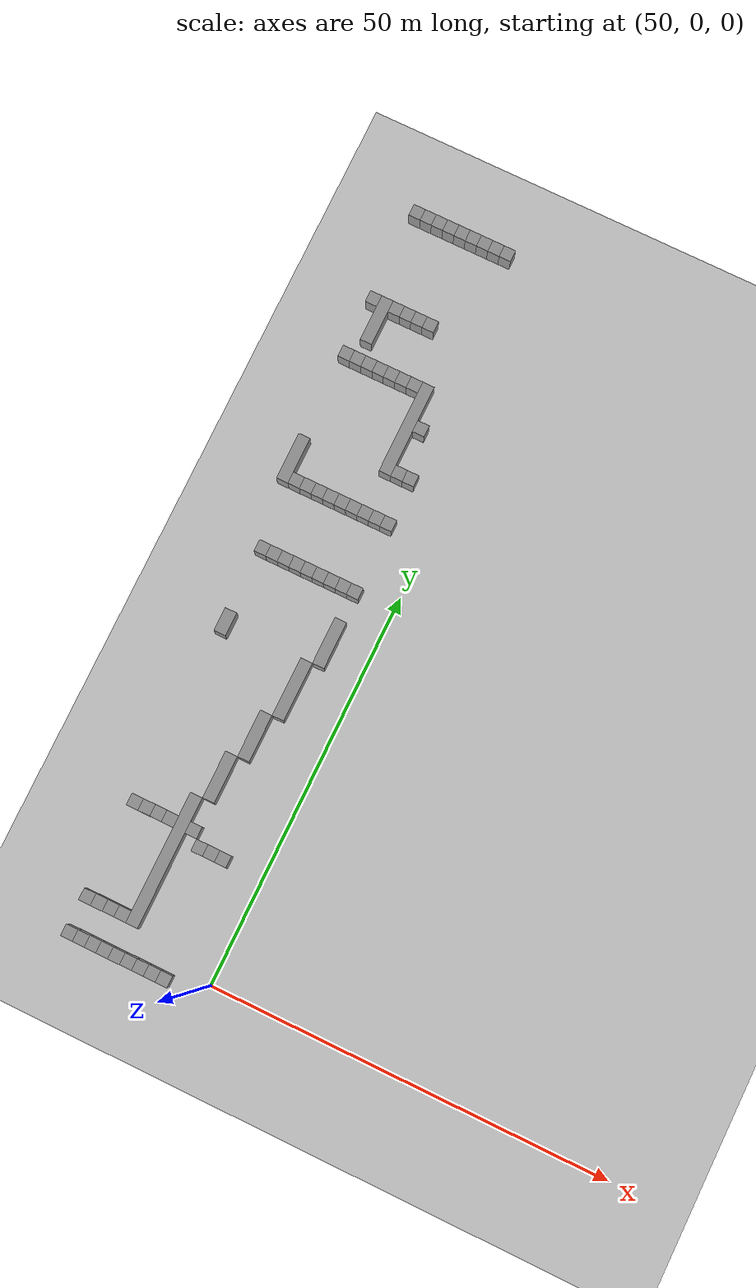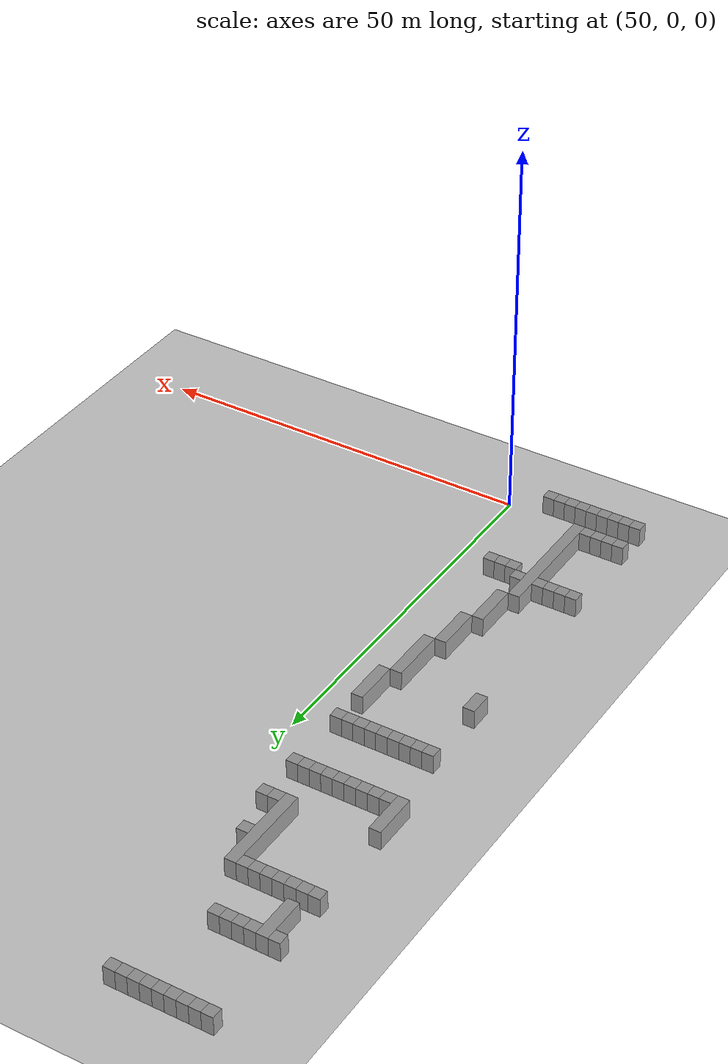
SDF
<sdf version="1.4">
 <world name="1_wall">
  <model name="ground_plane">
   <static>1</static>
   <link name="link">
    <collision name="collision">
     <geometry><plane><normal>0 0 1</normal><size>1000 1000</size></plane></geometry>
     <surface><friction><ode><mu>100</mu><mu2>50</mu2></ode></friction></surface>
    </collision>
    <visual name="visual">
     <cast_shadows>0</cast_shadows>
     <geometry><plane><normal>0 0 1</normal><size>10000 10000</size></plane></geometry>
     <material>
      <script><uri>file://media/materials/scripts/gazebo.material</uri><name>Gazebo/Grey</name></script>
     </material>
    </visual>
    <velocity_decay><linear>0</linear><angular>0</angular></velocity_decay>
   </link>
  </model>
  <model name="Wall_146">
   <static>1</static>
   <link name="Wall_146">
    <collision name="Wall_Collision_146">
     <geometry><box><size>6.0 1.5 2.5</size></box></geometry>
     <pose>0 0 1.25 0 -0 0</pose>
    </collision>
    <visual name="Wall_Visual_146">
     <pose>0 0 1.25 0 -0 0</pose>
     <geometry><box><size>6.0 1.5 2.5</size></box></geometry>
     <material>
      <script><uri>file://media/materials/scripts/gazebo.material</uri><name>Gazebo/Grey</name></script>
     </material>
    </visual>
    <velocity_decay><linear>0</linear><angular>0</angular></velocity_decay>
    <pose>31.5 59.25 0 0 0 1.5707963267948966</pose>
   </link>
  </model>
  <model name="Wall_147">
   <static>1</static>
   <link name="Wall_147">
    <collision name="Wall_Collision_147">
     <geometry><box><size>1.5 1.5 2.5</size></box></geometry>
     <pose>0 0 1.25 0 -0 0</pose>
    </collision>
    <visual name="Wall_Visual_147">
     <pose>0 0 1.25 0 -0 0</pose>
     <geometry><box><size>1.5 1.5 2.5</size></box></geometry>
     <material>
      <script><uri>file://media/materials/scripts/gazebo.material</uri><name>Gazebo/Grey</name></script>
     </material>
    </visual>
    <velocity_decay><linear>0</linear><angular>0</angular></velocity_decay>
    <pose>31.5 73.5 0 0 0 1.5707963267948966</pose>
   </link>
  </model>
  <model name="Wall_148">
   <static>1</static>
   <link name="Wall_148">
    <collision name="Wall_Collision_148">
     <geometry><box><size>1.5 1.5 2.5</size></box></geometry>
     <pose>0 0 1.25 0 -0 0</pose>
    </collision>
    <visual name="Wall_Visual_148">
     <pose>0 0 1.25 0 -0 0</pose>
     <geometry><box><size>1.5 1.5 2.5</size></box></geometry>
     <material>
      <script><uri>file://media/materials/scripts/gazebo.material</uri><name>Gazebo/Grey</name></script>
     </material>
    </visual>
    <velocity_decay><linear>0</linear><angular>0</angular></velocity_decay>
    <pose>31.5 81.0 0 0 0 1.5707963267948966</pose>
   </link>
  </model>
  <model name="Wall_149">
   <static>1</static>
   <link name="Wall_149">
    <collision name="Wall_Collision_149">
     <geometry><box><size>1.5 1.5 2.5</size></box></geometry>
     <pose>0 0 1.25 0 -0 0</pose>
    </collision>
    <visual name="Wall_Visual_149">
     <pose>0 0 1.25 0 -0 0</pose>
     <geometry><box><size>1.5 1.5 2.5</size></box></geometry>
     <material>
      <script><uri>file://media/materials/scripts/gazebo.material</uri><name>Gazebo/Grey</name></script>
     </material>
    </visual>
    <velocity_decay><linear>0</linear><angular>0</angular></velocity_decay>
    <pose>31.5 93.0 0 0 0 1.5707963267948966</pose>
   </link>
  </model>
  <model name="Wall_150">
   <static>1</static>
   <link name="Wall_150">
    <collision name="Wall_Collision_150">
     <geometry><box><size>1.5 1.5 2.5</size></box></geometry>
     <pose>0 0 1.25 0 -0 0</pose>
    </collision>
    <visual name="Wall_Visual_150">
     <pose>0 0 1.25 0 -0 0</pose>
     <geometry><box><size>1.5 1.5 2.5</size></box></geometry>
     <material>
      <script><uri>file://media/materials/scripts/gazebo.material</uri><name>Gazebo/Grey</name></script>
     </material>
    </visual>
    <velocity_decay><linear>0</linear><angular>0</angular></velocity_decay>
    <pose>33.0 -1.5 0 0 0 1.5707963267948966</pose>
   </link>
  </model>
  <model name="Wall_151">
   <static>1</static>
   <link name="Wall_151">
    <collision name="Wall_Collision_151">
     <geometry><box><size>1.5 1.5 2.5</size></box></geometry>
     <pose>0 0 1.25 0 -0 0</pose>
    </collision>
    <visual name="Wall_Visual_151">
     <pose>0 0 1.25 0 -0 0</pose>
     <geometry><box><size>1.5 1.5 2.5</size></box></geometry>
     <material>
      <script><uri>file://media/materials/scripts/gazebo.material</uri><name>Gazebo/Grey</name></script>
     </material>
    </visual>
    <velocity_decay><linear>0</linear><angular>0</angular></velocity_decay>
    <pose>33.0 3.0 0 0 0 1.5707963267948966</pose>
   </link>
  </model>
  <model name="Wall_152">
   <static>1</static>
   <link name="Wall_152">
    <collision name="Wall_Collision_152">
     <geometry><box><size>1.5 1.5 2.5</size></box></geometry>
     <pose>0 0 1.25 0 -0 0</pose>
    </collision>
    <visual name="Wall_Visual_152">
     <pose>0 0 1.25 0 -0 0</pose>
     <geometry><box><size>1.5 1.5 2.5</size></box></geometry>
     <material>
      <script><uri>file://media/materials/scripts/gazebo.material</uri><name>Gazebo/Grey</name></script>
     </material>
    </visual>
    <velocity_decay><linear>0</linear><angular>0</angular></velocity_decay>
    <pose>33.0 15.0 0 0 0 1.5707963267948966</pose>
   </link>
  </model>
  <model name="Wall_153">
   <static>1</static>
   <link name="Wall_153">
    <collision name="Wall_Collision_153">
     <geometry><box><size>3.0 1.5 2.5</size></box></geometry>
     <pose>0 0 1.25 0 -0 0</pose>
    </collision>
    <visual name="Wall_Visual_153">
     <pose>0 0 1.25 0 -0 0</pose>
     <geometry><box><size>3.0 1.5 2.5</size></box></geometry>
     <material>
      <script><uri>file://media/materials/scripts/gazebo.material</uri><name>Gazebo/Grey</name></script>
     </material>
    </visual>
    <velocity_decay><linear>0</linear><angular>0</angular></velocity_decay>
    <pose>33.0 38.25 0 0 0 1.5707963267948966</pose>
   </link>
  </model>
  <model name="Wall_154">
   <static>1</static>
   <link name="Wall_154">
    <collision name="Wall_Collision_154">
     <geometry><box><size>1.5 1.5 2.5</size></box></geometry>
     <pose>0 0 1.25 0 -0 0</pose>
    </collision>
    <visual name="Wall_Visual_154">
     <pose>0 0 1.25 0 -0 0</pose>
     <geometry><box><size>1.5 1.5 2.5</size></box></geometry>
     <material>
      <script><uri>file://media/materials/scripts/gazebo.material</uri><name>Gazebo/Grey</name></script>
     </material>
    </visual>
    <velocity_decay><linear>0</linear><angular>0</angular></velocity_decay>
    <pose>33.0 48.0 0 0 0 1.5707963267948966</pose>
   </link>
  </model>
  <model name="Wall_155">
   <static>1</static>
   <link name="Wall_155">
    <collision name="Wall_Collision_155">
     <geometry><box><size>1.5 1.5 2.5</size></box></geometry>
     <pose>0 0 1.25 0 -0 0</pose>
    </collision>
    <visual name="Wall_Visual_155">
     <pose>0 0 1.25 0 -0 0</pose>
     <geometry><box><size>1.5 1.5 2.5</size></box></geometry>
     <material>
      <script><uri>file://media/materials/scripts/gazebo.material</uri><name>Gazebo/Grey</name></script>
     </material>
    </visual>
    <velocity_decay><linear>0</linear><angular>0</angular></velocity_decay>
    <pose>33.0 57.0 0 0 0 1.5707963267948966</pose>
   </link>
  </model>
  <model name="Wall_156">
   <static>1</static>
   <link name="Wall_156">
    <collision name="Wall_Collision_156">
     <geometry><box><size>1.5 1.5 2.5</size></box></geometry>
     <pose>0 0 1.25 0 -0 0</pose>
    </collision>
    <visual name="Wall_Visual_156">
     <pose>0 0 1.25 0 -0 0</pose>
     <geometry><box><size>1.5 1.5 2.5</size></box></geometry>
     <material>
      <script><uri>file://media/materials/scripts/gazebo.material</uri><name>Gazebo/Grey</name></script>
     </material>
    </visual>
    <velocity_decay><linear>0</linear><angular>0</angular></velocity_decay>
    <pose>33.0 73.5 0 0 0 1.5707963267948966</pose>
   </link>
  </model>
  <model name="Wall_157">
   <static>1</static>
   <link name="Wall_157">
    <collision name="Wall_Collision_157">
     <geometry><box><size>6.0 1.5 2.5</size></box></geometry>
     <pose>0 0 1.25 0 -0 0</pose>
    </collision>
    <visual name="Wall_Visual_157">
     <pose>0 0 1.25 0 -0 0</pose>
     <geometry><box><size>6.0 1.5 2.5</size></box></geometry>
     <material>
      <script><uri>file://media/materials/scripts/gazebo.material</uri><name>Gazebo/Grey</name></script>
     </material>
    </visual>
    <velocity_decay><linear>0</linear><angular>0</angular></velocity_decay>
    <pose>33.0 78.75 0 0 0 1.5707963267948966</pose>
   </link>
  </model>
  <model name="Wall_158">
   <static>1</static>
   <link name="Wall_158">
    <collision name="Wall_Collision_158">
     <geometry><box><size>1.5 1.5 2.5</size></box></geometry>
     <pose>0 0 1.25 0 -0 0</pose>
    </collision>
    <visual name="Wall_Visual_158">
     <pose>0 0 1.25 0 -0 0</pose>
     <geometry><box><size>1.5 1.5 2.5</size></box></geometry>
     <material>
      <script><uri>file://media/materials/scripts/gazebo.material</uri><name>Gazebo/Grey</name></script>
     </material>
    </visual>
    <velocity_decay><linear>0</linear><angular>0</angular></velocity_decay>
    <pose>33.0 93.0 0 0 0 1.5707963267948966</pose>
   </link>
  </model>
  <model name="Wall_159">
   <static>1</static>
   <link name="Wall_159">
    <collision name="Wall_Collision_159">
     <geometry><box><size>1.5 1.5 2.5</size></box></geometry>
     <pose>0 0 1.25 0 -0 0</pose>
    </collision>
    <visual name="Wall_Visual_159">
     <pose>0 0 1.25 0 -0 0</pose>
     <geometry><box><size>1.5 1.5 2.5</size></box></geometry>
     <material>
      <script><uri>file://media/materials/scripts/gazebo.material</uri><name>Gazebo/Grey</name></script>
     </material>
    </visual>
    <velocity_decay><linear>0</linear><angular>0</angular></velocity_decay>
    <pose>34.5 -1.5 0 0 0 1.5707963267948966</pose>
   </link>
  </model>
  <model name="Wall_160">
   <static>1</static>
   <link name="Wall_160">
    <collision name="Wall_Collision_160">
     <geometry><box><size>1.5 1.5 2.5</size></box></geometry>
     <pose>0 0 1.25 0 -0 0</pose>
    </collision>
    <visual name="Wall_Visual_160">
     <pose>0 0 1.25 0 -0 0</pose>
     <geometry><box><size>1.5 1.5 2.5</size></box></geometry>
     <material>
      <script><uri>file://media/materials/scripts/gazebo.material</uri><name>Gazebo/Grey</name></script>
     </material>
    </visual>
    <velocity_decay><linear>0</linear><angular>0</angular></velocity_decay>
    <pose>34.5 3.0 0 0 0 1.5707963267948966</pose>
   </link>
  </model>
  <model name="Wall_161">
   <static>1</static>
   <link name="Wall_161">
    <collision name="Wall_Collision_161">
     <geometry><box><size>1.5 1.5 2.5</size></box></geometry>
     <pose>0 0 1.25 0 -0 0</pose>
    </collision>
    <visual name="Wall_Visual_161">
     <pose>0 0 1.25 0 -0 0</pose>
     <geometry><box><size>1.5 1.5 2.5</size></box></geometry>
     <material>
      <script><uri>file://media/materials/scripts/gazebo.material</uri><name>Gazebo/Grey</name></script>
     </material>
    </visual>
    <velocity_decay><linear>0</linear><angular>0</angular></velocity_decay>
    <pose>34.5 15.0 0 0 0 1.5707963267948966</pose>
   </link>
  </model>
  <model name="Wall_162">
   <static>1</static>
   <link name="Wall_162">
    <collision name="Wall_Collision_162">
     <geometry><box><size>1.5 1.5 2.5</size></box></geometry>
     <pose>0 0 1.25 0 -0 0</pose>
    </collision>
    <visual name="Wall_Visual_162">
     <pose>0 0 1.25 0 -0 0</pose>
     <geometry><box><size>1.5 1.5 2.5</size></box></geometry>
     <material>
      <script><uri>file://media/materials/scripts/gazebo.material</uri><name>Gazebo/Grey</name></script>
     </material>
    </visual>
    <velocity_decay><linear>0</linear><angular>0</angular></velocity_decay>
    <pose>34.5 48.0 0 0 0 1.5707963267948966</pose>
   </link>
  </model>
  <model name="Wall_163">
   <static>1</static>
   <link name="Wall_163">
    <collision name="Wall_Collision_163">
     <geometry><box><size>1.5 1.5 2.5</size></box></geometry>
     <pose>0 0 1.25 0 -0 0</pose>
    </collision>
    <visual name="Wall_Visual_163">
     <pose>0 0 1.25 0 -0 0</pose>
     <geometry><box><size>1.5 1.5 2.5</size></box></geometry>
     <material>
      <script><uri>file://media/materials/scripts/gazebo.material</uri><name>Gazebo/Grey</name></script>
     </material>
    </visual>
    <velocity_decay><linear>0</linear><angular>0</angular></velocity_decay>
    <pose>34.5 57.0 0 0 0 1.5707963267948966</pose>
   </link>
  </model>
  <model name="Wall_164">
   <static>1</static>
   <link name="Wall_164">
    <collision name="Wall_Collision_164">
     <geometry><box><size>1.5 1.5 2.5</size></box></geometry>
     <pose>0 0 1.25 0 -0 0</pose>
    </collision>
    <visual name="Wall_Visual_164">
     <pose>0 0 1.25 0 -0 0</pose>
     <geometry><box><size>1.5 1.5 2.5</size></box></geometry>
     <material>
      <script><uri>file://media/materials/scripts/gazebo.material</uri><name>Gazebo/Grey</name></script>
     </material>
    </visual>
    <velocity_decay><linear>0</linear><angular>0</angular></velocity_decay>
    <pose>34.5 73.5 0 0 0 1.5707963267948966</pose>
   </link>
  </model>
  <model name="Wall_165">
   <static>1</static>
   <link name="Wall_165">
    <collision name="Wall_Collision_165">
     <geometry><box><size>1.5 1.5 2.5</size></box></geometry>
     <pose>0 0 1.25 0 -0 0</pose>
    </collision>
    <visual name="Wall_Visual_165">
     <pose>0 0 1.25 0 -0 0</pose>
     <geometry><box><size>1.5 1.5 2.5</size></box></geometry>
     <material>
      <script><uri>file://media/materials/scripts/gazebo.material</uri><name>Gazebo/Grey</name></script>
     </material>
    </visual>
    <velocity_decay><linear>0</linear><angular>0</angular></velocity_decay>
    <pose>34.5 81.0 0 0 0 1.5707963267948966</pose>
   </link>
  </model>
  <model name="Wall_166">
   <static>1</static>
   <link name="Wall_166">
    <collision name="Wall_Collision_166">
     <geometry><box><size>1.5 1.5 2.5</size></box></geometry>
     <pose>0 0 1.25 0 -0 0</pose>
    </collision>
    <visual name="Wall_Visual_166">
     <pose>0 0 1.25 0 -0 0</pose>
     <geometry><box><size>1.5 1.5 2.5</size></box></geometry>
     <material>
      <script><uri>file://media/materials/scripts/gazebo.material</uri><name>Gazebo/Grey</name></script>
     </material>
    </visual>
    <velocity_decay><linear>0</linear><angular>0</angular></velocity_decay>
    <pose>34.5 93.0 0 0 0 1.5707963267948966</pose>
   </link>
  </model>
  <model name="Wall_167">
   <static>1</static>
   <link name="Wall_167">
    <collision name="Wall_Collision_167">
     <geometry><box><size>1.5 1.5 2.5</size></box></geometry>
     <pose>0 0 1.25 0 -0 0</pose>
    </collision>
    <visual name="Wall_Visual_167">
     <pose>0 0 1.25 0 -0 0</pose>
     <geometry><box><size>1.5 1.5 2.5</size></box></geometry>
     <material>
      <script><uri>file://media/materials/scripts/gazebo.material</uri><name>Gazebo/Grey</name></script>
     </material>
    </visual>
    <velocity_decay><linear>0</linear><angular>0</angular></velocity_decay>
    <pose>36.0 -1.5 0 0 0 1.5707963267948966</pose>
   </link>
  </model>
  <model name="Wall_168">
   <static>1</static>
   <link name="Wall_168">
    <collision name="Wall_Collision_168">
     <geometry><box><size>1.5 1.5 2.5</size></box></geometry>
     <pose>0 0 1.25 0 -0 0</pose>
    </collision>
    <visual name="Wall_Visual_168">
     <pose>0 0 1.25 0 -0 0</pose>
     <geometry><box><size>1.5 1.5 2.5</size></box></geometry>
     <material>
      <script><uri>file://media/materials/scripts/gazebo.material</uri><name>Gazebo/Grey</name></script>
     </material>
    </visual>
    <velocity_decay><linear>0</linear><angular>0</angular></velocity_decay>
    <pose>36.0 3.0 0 0 0 1.5707963267948966</pose>
   </link>
  </model>
  <model name="Wall_169">
   <static>1</static>
   <link name="Wall_169">
    <collision name="Wall_Collision_169">
     <geometry><box><size>1.5 1.5 2.5</size></box></geometry>
     <pose>0 0 1.25 0 -0 0</pose>
    </collision>
    <visual name="Wall_Visual_169">
     <pose>0 0 1.25 0 -0 0</pose>
     <geometry><box><size>1.5 1.5 2.5</size></box></geometry>
     <material>
      <script><uri>file://media/materials/scripts/gazebo.material</uri><name>Gazebo/Grey</name></script>
     </material>
    </visual>
    <velocity_decay><linear>0</linear><angular>0</angular></velocity_decay>
    <pose>36.0 15.0 0 0 0 1.5707963267948966</pose>
   </link>
  </model>
  <model name="Wall_170">
   <static>1</static>
   <link name="Wall_170">
    <collision name="Wall_Collision_170">
     <geometry><box><size>1.5 1.5 2.5</size></box></geometry>
     <pose>0 0 1.25 0 -0 0</pose>
    </collision>
    <visual name="Wall_Visual_170">
     <pose>0 0 1.25 0 -0 0</pose>
     <geometry><box><size>1.5 1.5 2.5</size></box></geometry>
     <material>
      <script><uri>file://media/materials/scripts/gazebo.material</uri><name>Gazebo/Grey</name></script>
     </material>
    </visual>
    <velocity_decay><linear>0</linear><angular>0</angular></velocity_decay>
    <pose>36.0 48.0 0 0 0 1.5707963267948966</pose>
   </link>
  </model>
  <model name="Wall_171">
   <static>1</static>
   <link name="Wall_171">
    <collision name="Wall_Collision_171">
     <geometry><box><size>1.5 1.5 2.5</size></box></geometry>
     <pose>0 0 1.25 0 -0 0</pose>
    </collision>
    <visual name="Wall_Visual_171">
     <pose>0 0 1.25 0 -0 0</pose>
     <geometry><box><size>1.5 1.5 2.5</size></box></geometry>
     <material>
      <script><uri>file://media/materials/scripts/gazebo.material</uri><name>Gazebo/Grey</name></script>
     </material>
    </visual>
    <velocity_decay><linear>0</linear><angular>0</angular></velocity_decay>
    <pose>36.0 57.0 0 0 0 1.5707963267948966</pose>
   </link>
  </model>
  <model name="Wall_172">
   <static>1</static>
   <link name="Wall_172">
    <collision name="Wall_Collision_172">
     <geometry><box><size>1.5 1.5 2.5</size></box></geometry>
     <pose>0 0 1.25 0 -0 0</pose>
    </collision>
    <visual name="Wall_Visual_172">
     <pose>0 0 1.25 0 -0 0</pose>
     <geometry><box><size>1.5 1.5 2.5</size></box></geometry>
     <material>
      <script><uri>file://media/materials/scripts/gazebo.material</uri><name>Gazebo/Grey</name></script>
     </material>
    </visual>
    <velocity_decay><linear>0</linear><angular>0</angular></velocity_decay>
    <pose>36.0 73.5 0 0 0 1.5707963267948966</pose>
   </link>
  </model>
  <model name="Wall_173">
   <static>1</static>
   <link name="Wall_173">
    <collision name="Wall_Collision_173">
     <geometry><box><size>1.5 1.5 2.5</size></box></geometry>
     <pose>0 0 1.25 0 -0 0</pose>
    </collision>
    <visual name="Wall_Visual_173">
     <pose>0 0 1.25 0 -0 0</pose>
     <geometry><box><size>1.5 1.5 2.5</size></box></geometry>
     <material>
      <script><uri>file://media/materials/scripts/gazebo.material</uri><name>Gazebo/Grey</name></script>
     </material>
    </visual>
    <velocity_decay><linear>0</linear><angular>0</angular></velocity_decay>
    <pose>36.0 81.0 0 0 0 1.5707963267948966</pose>
   </link>
  </model>
  <model name="Wall_174">
   <static>1</static>
   <link name="Wall_174">
    <collision name="Wall_Collision_174">
     <geometry><box><size>1.5 1.5 2.5</size></box></geometry>
     <pose>0 0 1.25 0 -0 0</pose>
    </collision>
    <visual name="Wall_Visual_174">
     <pose>0 0 1.25 0 -0 0</pose>
     <geometry><box><size>1.5 1.5 2.5</size></box></geometry>
     <material>
      <script><uri>file://media/materials/scripts/gazebo.material</uri><name>Gazebo/Grey</name></script>
     </material>
    </visual>
    <velocity_decay><linear>0</linear><angular>0</angular></velocity_decay>
    <pose>36.0 93.0 0 0 0 1.5707963267948966</pose>
   </link>
  </model>
  <model name="Wall_175">
   <static>1</static>
   <link name="Wall_175">
    <collision name="Wall_Collision_175">
     <geometry><box><size>1.5 1.5 2.5</size></box></geometry>
     <pose>0 0 1.25 0 -0 0</pose>
    </collision>
    <visual name="Wall_Visual_175">
     <pose>0 0 1.25 0 -0 0</pose>
     <geometry><box><size>1.5 1.5 2.5</size></box></geometry>
     <material>
      <script><uri>file://media/materials/scripts/gazebo.material</uri><name>Gazebo/Grey</name></script>
     </material>
    </visual>
    <velocity_decay><linear>0</linear><angular>0</angular></velocity_decay>
    <pose>37.5 -1.5 0 0 0 1.5707963267948966</pose>
   </link>
  </model>
  <model name="Wall_176">
   <static>1</static>
   <link name="Wall_176">
    <collision name="Wall_Collision_176">
     <geometry><box><size>1.5 1.5 2.5</size></box></geometry>
     <pose>0 0 1.25 0 -0 0</pose>
    </collision>
    <visual name="Wall_Visual_176">
     <pose>0 0 1.25 0 -0 0</pose>
     <geometry><box><size>1.5 1.5 2.5</size></box></geometry>
     <material>
      <script><uri>file://media/materials/scripts/gazebo.material</uri><name>Gazebo/Grey</name></script>
     </material>
    </visual>
    <velocity_decay><linear>0</linear><angular>0</angular></velocity_decay>
    <pose>37.5 3.0 0 0 0 1.5707963267948966</pose>
   </link>
  </model>
  <model name="Wall_177">
   <static>1</static>
   <link name="Wall_177">
    <collision name="Wall_Collision_177">
     <geometry><box><size>1.5 1.5 2.5</size></box></geometry>
     <pose>0 0 1.25 0 -0 0</pose>
    </collision>
    <visual name="Wall_Visual_177">
     <pose>0 0 1.25 0 -0 0</pose>
     <geometry><box><size>1.5 1.5 2.5</size></box></geometry>
     <material>
      <script><uri>file://media/materials/scripts/gazebo.material</uri><name>Gazebo/Grey</name></script>
     </material>
    </visual>
    <velocity_decay><linear>0</linear><angular>0</angular></velocity_decay>
    <pose>37.5 15.0 0 0 0 1.5707963267948966</pose>
   </link>
  </model>
  <model name="Wall_178">
   <static>1</static>
   <link name="Wall_178">
    <collision name="Wall_Collision_178">
     <geometry><box><size>1.5 1.5 2.5</size></box></geometry>
     <pose>0 0 1.25 0 -0 0</pose>
    </collision>
    <visual name="Wall_Visual_178">
     <pose>0 0 1.25 0 -0 0</pose>
     <geometry><box><size>1.5 1.5 2.5</size></box></geometry>
     <material>
      <script><uri>file://media/materials/scripts/gazebo.material</uri><name>Gazebo/Grey</name></script>
     </material>
    </visual>
    <velocity_decay><linear>0</linear><angular>0</angular></velocity_decay>
    <pose>37.5 48.0 0 0 0 1.5707963267948966</pose>
   </link>
  </model>
  <model name="Wall_179">
   <static>1</static>
   <link name="Wall_179">
    <collision name="Wall_Collision_179">
     <geometry><box><size>1.5 1.5 2.5</size></box></geometry>
     <pose>0 0 1.25 0 -0 0</pose>
    </collision>
    <visual name="Wall_Visual_179">
     <pose>0 0 1.25 0 -0 0</pose>
     <geometry><box><size>1.5 1.5 2.5</size></box></geometry>
     <material>
      <script><uri>file://media/materials/scripts/gazebo.material</uri><name>Gazebo/Grey</name></script>
     </material>
    </visual>
    <velocity_decay><linear>0</linear><angular>0</angular></velocity_decay>
    <pose>37.5 57.0 0 0 0 1.5707963267948966</pose>
   </link>
  </model>
  <model name="Wall_180">
   <static>1</static>
   <link name="Wall_180">
    <collision name="Wall_Collision_180">
     <geometry><box><size>1.5 1.5 2.5</size></box></geometry>
     <pose>0 0 1.25 0 -0 0</pose>
    </collision>
    <visual name="Wall_Visual_180">
     <pose>0 0 1.25 0 -0 0</pose>
     <geometry><box><size>1.5 1.5 2.5</size></box></geometry>
     <material>
      <script><uri>file://media/materials/scripts/gazebo.material</uri><name>Gazebo/Grey</name></script>
     </material>
    </visual>
    <velocity_decay><linear>0</linear><angular>0</angular></velocity_decay>
    <pose>37.5 73.5 0 0 0 1.5707963267948966</pose>
   </link>
  </model>
  <model name="Wall_181">
   <static>1</static>
   <link name="Wall_181">
    <collision name="Wall_Collision_181">
     <geometry><box><size>1.5 1.5 2.5</size></box></geometry>
     <pose>0 0 1.25 0 -0 0</pose>
    </collision>
    <visual name="Wall_Visual_181">
     <pose>0 0 1.25 0 -0 0</pose>
     <geometry><box><size>1.5 1.5 2.5</size></box></geometry>
     <material>
      <script><uri>file://media/materials/scripts/gazebo.material</uri><name>Gazebo/Grey</name></script>
     </material>
    </visual>
    <velocity_decay><linear>0</linear><angular>0</angular></velocity_decay>
    <pose>37.5 81.0 0 0 0 1.5707963267948966</pose>
   </link>
  </model>
  <model name="Wall_182">
   <static>1</static>
   <link name="Wall_182">
    <collision name="Wall_Collision_182">
     <geometry><box><size>1.5 1.5 2.5</size></box></geometry>
     <pose>0 0 1.25 0 -0 0</pose>
    </collision>
    <visual name="Wall_Visual_182">
     <pose>0 0 1.25 0 -0 0</pose>
     <geometry><box><size>1.5 1.5 2.5</size></box></geometry>
     <material>
      <script><uri>file://media/materials/scripts/gazebo.material</uri><name>Gazebo/Grey</name></script>
     </material>
    </visual>
    <velocity_decay><linear>0</linear><angular>0</angular></velocity_decay>
    <pose>37.5 93.0 0 0 0 1.5707963267948966</pose>
   </link>
  </model>
  <model name="Wall_183">
   <static>1</static>
   <link name="Wall_183">
    <collision name="Wall_Collision_183">
     <geometry><box><size>1.5 1.5 2.5</size></box></geometry>
     <pose>0 0 1.25 0 -0 0</pose>
    </collision>
    <visual name="Wall_Visual_183">
     <pose>0 0 1.25 0 -0 0</pose>
     <geometry><box><size>1.5 1.5 2.5</size></box></geometry>
     <material>
      <script><uri>file://media/materials/scripts/gazebo.material</uri><name>Gazebo/Grey</name></script>
     </material>
    </visual>
    <velocity_decay><linear>0</linear><angular>0</angular></velocity_decay>
    <pose>39.0 -1.5 0 0 0 1.5707963267948966</pose>
   </link>
  </model>
  <model name="Wall_184">
   <static>1</static>
   <link name="Wall_184">
    <collision name="Wall_Collision_184">
     <geometry><box><size>16.5 1.5 2.5</size></box></geometry>
     <pose>0 0 1.25 0 -0 0</pose>
    </collision>
    <visual name="Wall_Visual_184">
     <pose>0 0 1.25 0 -0 0</pose>
     <geometry><box><size>16.5 1.5 2.5</size></box></geometry>
     <material>
      <script><uri>file://media/materials/scripts/gazebo.material</uri><name>Gazebo/Grey</name></script>
     </material>
    </visual>
    <velocity_decay><linear>0</linear><angular>0</angular></velocity_decay>
    <pose>39.0 10.5 0 0 0 1.5707963267948966</pose>
   </link>
  </model>
  <model name="Wall_185">
   <static>1</static>
   <link name="Wall_185">
    <collision name="Wall_Collision_185">
     <geometry><box><size>1.5 1.5 2.5</size></box></geometry>
     <pose>0 0 1.25 0 -0 0</pose>
    </collision>
    <visual name="Wall_Visual_185">
     <pose>0 0 1.25 0 -0 0</pose>
     <geometry><box><size>1.5 1.5 2.5</size></box></geometry>
     <material>
      <script><uri>file://media/materials/scripts/gazebo.material</uri><name>Gazebo/Grey</name></script>
     </material>
    </visual>
    <velocity_decay><linear>0</linear><angular>0</angular></velocity_decay>
    <pose>39.0 48.0 0 0 0 1.5707963267948966</pose>
   </link>
  </model>
  <model name="Wall_186">
   <static>1</static>
   <link name="Wall_186">
    <collision name="Wall_Collision_186">
     <geometry><box><size>1.5 1.5 2.5</size></box></geometry>
     <pose>0 0 1.25 0 -0 0</pose>
    </collision>
    <visual name="Wall_Visual_186">
     <pose>0 0 1.25 0 -0 0</pose>
     <geometry><box><size>1.5 1.5 2.5</size></box></geometry>
     <material>
      <script><uri>file://media/materials/scripts/gazebo.material</uri><name>Gazebo/Grey</name></script>
     </material>
    </visual>
    <velocity_decay><linear>0</linear><angular>0</angular></velocity_decay>
    <pose>39.0 57.0 0 0 0 1.5707963267948966</pose>
   </link>
  </model>
  <model name="Wall_187">
   <static>1</static>
   <link name="Wall_187">
    <collision name="Wall_Collision_187">
     <geometry><box><size>1.5 1.5 2.5</size></box></geometry>
     <pose>0 0 1.25 0 -0 0</pose>
    </collision>
    <visual name="Wall_Visual_187">
     <pose>0 0 1.25 0 -0 0</pose>
     <geometry><box><size>1.5 1.5 2.5</size></box></geometry>
     <material>
      <script><uri>file://media/materials/scripts/gazebo.material</uri><name>Gazebo/Grey</name></script>
     </material>
    </visual>
    <velocity_decay><linear>0</linear><angular>0</angular></velocity_decay>
    <pose>39.0 73.5 0 0 0 1.5707963267948966</pose>
   </link>
  </model>
  <model name="Wall_188">
   <static>1</static>
   <link name="Wall_188">
    <collision name="Wall_Collision_188">
     <geometry><box><size>1.5 1.5 2.5</size></box></geometry>
     <pose>0 0 1.25 0 -0 0</pose>
    </collision>
    <visual name="Wall_Visual_188">
     <pose>0 0 1.25 0 -0 0</pose>
     <geometry><box><size>1.5 1.5 2.5</size></box></geometry>
     <material>
      <script><uri>file://media/materials/scripts/gazebo.material</uri><name>Gazebo/Grey</name></script>
     </material>
    </visual>
    <velocity_decay><linear>0</linear><angular>0</angular></velocity_decay>
    <pose>39.0 81.0 0 0 0 1.5707963267948966</pose>
   </link>
  </model>
  <model name="Wall_189">
   <static>1</static>
   <link name="Wall_189">
    <collision name="Wall_Collision_189">
     <geometry><box><size>1.5 1.5 2.5</size></box></geometry>
     <pose>0 0 1.25 0 -0 0</pose>
    </collision>
    <visual name="Wall_Visual_189">
     <pose>0 0 1.25 0 -0 0</pose>
     <geometry><box><size>1.5 1.5 2.5</size></box></geometry>
     <material>
      <script><uri>file://media/materials/scripts/gazebo.material</uri><name>Gazebo/Grey</name></script>
     </material>
    </visual>
    <velocity_decay><linear>0</linear><angular>0</angular></velocity_decay>
    <pose>39.0 93.0 0 0 0 1.5707963267948966</pose>
   </link>
  </model>
  <model name="Wall_190">
   <static>1</static>
   <link name="Wall_190">
    <collision name="Wall_Collision_190">
     <geometry><box><size>1.5 1.5 2.5</size></box></geometry>
     <pose>0 0 1.25 0 -0 0</pose>
    </collision>
    <visual name="Wall_Visual_190">
     <pose>0 0 1.25 0 -0 0</pose>
     <geometry><box><size>1.5 1.5 2.5</size></box></geometry>
     <material>
      <script><uri>file://media/materials/scripts/gazebo.material</uri><name>Gazebo/Grey</name></script>
     </material>
    </visual>
    <velocity_decay><linear>0</linear><angular>0</angular></velocity_decay>
    <pose>40.5 -1.5 0 0 0 1.5707963267948966</pose>
   </link>
  </model>
  <model name="Wall_191">
   <static>1</static>
   <link name="Wall_191">
    <collision name="Wall_Collision_191">
     <geometry><box><size>1.5 1.5 2.5</size></box></geometry>
     <pose>0 0 1.25 0 -0 0</pose>
    </collision>
    <visual name="Wall_Visual_191">
     <pose>0 0 1.25 0 -0 0</pose>
     <geometry><box><size>1.5 1.5 2.5</size></box></geometry>
     <material>
      <script><uri>file://media/materials/scripts/gazebo.material</uri><name>Gazebo/Grey</name></script>
     </material>
    </visual>
    <velocity_decay><linear>0</linear><angular>0</angular></velocity_decay>
    <pose>40.5 15.0 0 0 0 1.5707963267948966</pose>
   </link>
  </model>
  <model name="Wall_192">
   <static>1</static>
   <link name="Wall_192">
    <collision name="Wall_Collision_192">
     <geometry><box><size>6.0 1.5 2.5</size></box></geometry>
     <pose>0 0 1.25 0 -0 0</pose>
    </collision>
    <visual name="Wall_Visual_192">
     <pose>0 0 1.25 0 -0 0</pose>
     <geometry><box><size>6.0 1.5 2.5</size></box></geometry>
     <material>
      <script><uri>file://media/materials/scripts/gazebo.material</uri><name>Gazebo/Grey</name></script>
     </material>
    </visual>
    <velocity_decay><linear>0</linear><angular>0</angular></velocity_decay>
    <pose>40.5 21.75 0 0 0 1.5707963267948966</pose>
   </link>
  </model>
  <model name="Wall_193">
   <static>1</static>
   <link name="Wall_193">
    <collision name="Wall_Collision_193">
     <geometry><box><size>1.5 1.5 2.5</size></box></geometry>
     <pose>0 0 1.25 0 -0 0</pose>
    </collision>
    <visual name="Wall_Visual_193">
     <pose>0 0 1.25 0 -0 0</pose>
     <geometry><box><size>1.5 1.5 2.5</size></box></geometry>
     <material>
      <script><uri>file://media/materials/scripts/gazebo.material</uri><name>Gazebo/Grey</name></script>
     </material>
    </visual>
    <velocity_decay><linear>0</linear><angular>0</angular></velocity_decay>
    <pose>40.5 48.0 0 0 0 1.5707963267948966</pose>
   </link>
  </model>
  <model name="Wall_194">
   <static>1</static>
   <link name="Wall_194">
    <collision name="Wall_Collision_194">
     <geometry><box><size>1.5 1.5 2.5</size></box></geometry>
     <pose>0 0 1.25 0 -0 0</pose>
    </collision>
    <visual name="Wall_Visual_194">
     <pose>0 0 1.25 0 -0 0</pose>
     <geometry><box><size>1.5 1.5 2.5</size></box></geometry>
     <material>
      <script><uri>file://media/materials/scripts/gazebo.material</uri><name>Gazebo/Grey</name></script>
     </material>
    </visual>
    <velocity_decay><linear>0</linear><angular>0</angular></velocity_decay>
    <pose>40.5 57.0 0 0 0 1.5707963267948966</pose>
   </link>
  </model>
  <model name="Wall_195">
   <static>1</static>
   <link name="Wall_195">
    <collision name="Wall_Collision_195">
     <geometry><box><size>1.5 1.5 2.5</size></box></geometry>
     <pose>0 0 1.25 0 -0 0</pose>
    </collision>
    <visual name="Wall_Visual_195">
     <pose>0 0 1.25 0 -0 0</pose>
     <geometry><box><size>1.5 1.5 2.5</size></box></geometry>
     <material>
      <script><uri>file://media/materials/scripts/gazebo.material</uri><name>Gazebo/Grey</name></script>
     </material>
    </visual>
    <velocity_decay><linear>0</linear><angular>0</angular></velocity_decay>
    <pose>40.5 73.5 0 0 0 1.5707963267948966</pose>
   </link>
  </model>
  <model name="Wall_196">
   <static>1</static>
   <link name="Wall_196">
    <collision name="Wall_Collision_196">
     <geometry><box><size>1.5 1.5 2.5</size></box></geometry>
     <pose>0 0 1.25 0 -0 0</pose>
    </collision>
    <visual name="Wall_Visual_196">
     <pose>0 0 1.25 0 -0 0</pose>
     <geometry><box><size>1.5 1.5 2.5</size></box></geometry>
     <material>
      <script><uri>file://media/materials/scripts/gazebo.material</uri><name>Gazebo/Grey</name></script>
     </material>
    </visual>
    <velocity_decay><linear>0</linear><angular>0</angular></velocity_decay>
    <pose>40.5 93.0 0 0 0 1.5707963267948966</pose>
   </link>
  </model>
  <model name="Wall_197">
   <static>1</static>
   <link name="Wall_197">
    <collision name="Wall_Collision_197">
     <geometry><box><size>1.5 1.5 2.5</size></box></geometry>
     <pose>0 0 1.25 0 -0 0</pose>
    </collision>
    <visual name="Wall_Visual_197">
     <pose>0 0 1.25 0 -0 0</pose>
     <geometry><box><size>1.5 1.5 2.5</size></box></geometry>
     <material>
      <script><uri>file://media/materials/scripts/gazebo.material</uri><name>Gazebo/Grey</name></script>
     </material>
    </visual>
    <velocity_decay><linear>0</linear><angular>0</angular></velocity_decay>
    <pose>42.0 -1.5 0 0 0 1.5707963267948966</pose>
   </link>
  </model>
  <model name="Wall_198">
   <static>1</static>
   <link name="Wall_198">
    <collision name="Wall_Collision_198">
     <geometry><box><size>1.5 1.5 2.5</size></box></geometry>
     <pose>0 0 1.25 0 -0 0</pose>
    </collision>
    <visual name="Wall_Visual_198">
     <pose>0 0 1.25 0 -0 0</pose>
     <geometry><box><size>1.5 1.5 2.5</size></box></geometry>
     <material>
      <script><uri>file://media/materials/scripts/gazebo.material</uri><name>Gazebo/Grey</name></script>
     </material>
    </visual>
    <velocity_decay><linear>0</linear><angular>0</angular></velocity_decay>
    <pose>42.0 13.5 0 0 0 1.5707963267948966</pose>
   </link>
  </model>
  <model name="Wall_199">
   <static>1</static>
   <link name="Wall_199">
    <collision name="Wall_Collision_199">
     <geometry><box><size>6.0 1.5 2.5</size></box></geometry>
     <pose>0 0 1.25 0 -0 0</pose>
    </collision>
    <visual name="Wall_Visual_199">
     <pose>0 0 1.25 0 -0 0</pose>
     <geometry><box><size>6.0 1.5 2.5</size></box></geometry>
     <material>
      <script><uri>file://media/materials/scripts/gazebo.material</uri><name>Gazebo/Grey</name></script>
     </material>
    </visual>
    <velocity_decay><linear>0</linear><angular>0</angular></velocity_decay>
    <pose>42.0 27.75 0 0 0 1.5707963267948966</pose>
   </link>
  </model>
  <model name="Wall_200">
   <static>1</static>
   <link name="Wall_200">
    <collision name="Wall_Collision_200">
     <geometry><box><size>1.5 1.5 2.5</size></box></geometry>
     <pose>0 0 1.25 0 -0 0</pose>
    </collision>
    <visual name="Wall_Visual_200">
     <pose>0 0 1.25 0 -0 0</pose>
     <geometry><box><size>1.5 1.5 2.5</size></box></geometry>
     <material>
      <script><uri>file://media/materials/scripts/gazebo.material</uri><name>Gazebo/Grey</name></script>
     </material>
    </visual>
    <velocity_decay><linear>0</linear><angular>0</angular></velocity_decay>
    <pose>42.0 48.0 0 0 0 1.5707963267948966</pose>
   </link>
  </model>
  <model name="Wall_201">
   <static>1</static>
   <link name="Wall_201">
    <collision name="Wall_Collision_201">
     <geometry><box><size>1.5 1.5 2.5</size></box></geometry>
     <pose>0 0 1.25 0 -0 0</pose>
    </collision>
    <visual name="Wall_Visual_201">
     <pose>0 0 1.25 0 -0 0</pose>
     <geometry><box><size>1.5 1.5 2.5</size></box></geometry>
     <material>
      <script><uri>file://media/materials/scripts/gazebo.material</uri><name>Gazebo/Grey</name></script>
     </material>
    </visual>
    <velocity_decay><linear>0</linear><angular>0</angular></velocity_decay>
    <pose>42.0 57.0 0 0 0 1.5707963267948966</pose>
   </link>
  </model>
  <model name="Wall_202">
   <static>1</static>
   <link name="Wall_202">
    <collision name="Wall_Collision_202">
     <geometry><box><size>12.0 1.5 2.5</size></box></geometry>
     <pose>0 0 1.25 0 -0 0</pose>
    </collision>
    <visual name="Wall_Visual_202">
     <pose>0 0 1.25 0 -0 0</pose>
     <geometry><box><size>12.0 1.5 2.5</size></box></geometry>
     <material>
      <script><uri>file://media/materials/scripts/gazebo.material</uri><name>Gazebo/Grey</name></script>
     </material>
    </visual>
    <velocity_decay><linear>0</linear><angular>0</angular></velocity_decay>
    <pose>42.0 68.25 0 0 0 1.5707963267948966</pose>
   </link>
  </model>
  <model name="Wall_203">
   <static>1</static>
   <link name="Wall_203">
    <collision name="Wall_Collision_203">
     <geometry><box><size>1.5 1.5 2.5</size></box></geometry>
     <pose>0 0 1.25 0 -0 0</pose>
    </collision>
    <visual name="Wall_Visual_203">
     <pose>0 0 1.25 0 -0 0</pose>
     <geometry><box><size>1.5 1.5 2.5</size></box></geometry>
     <material>
      <script><uri>file://media/materials/scripts/gazebo.material</uri><name>Gazebo/Grey</name></script>
     </material>
    </visual>
    <velocity_decay><linear>0</linear><angular>0</angular></velocity_decay>
    <pose>42.0 93.0 0 0 0 1.5707963267948966</pose>
   </link>
  </model>
  <model name="Wall_204">
   <static>1</static>
   <link name="Wall_204">
    <collision name="Wall_Collision_204">
     <geometry><box><size>1.5 1.5 2.5</size></box></geometry>
     <pose>0 0 1.25 0 -0 0</pose>
    </collision>
    <visual name="Wall_Visual_204">
     <pose>0 0 1.25 0 -0 0</pose>
     <geometry><box><size>1.5 1.5 2.5</size></box></geometry>
     <material>
      <script><uri>file://media/materials/scripts/gazebo.material</uri><name>Gazebo/Grey</name></script>
     </material>
    </visual>
    <velocity_decay><linear>0</linear><angular>0</angular></velocity_decay>
    <pose>43.5 -1.5 0 0 0 1.5707963267948966</pose>
   </link>
  </model>
  <model name="Wall_205">
   <static>1</static>
   <link name="Wall_205">
    <collision name="Wall_Collision_205">
     <geometry><box><size>1.5 1.5 2.5</size></box></geometry>
     <pose>0 0 1.25 0 -0 0</pose>
    </collision>
    <visual name="Wall_Visual_205">
     <pose>0 0 1.25 0 -0 0</pose>
     <geometry><box><size>1.5 1.5 2.5</size></box></geometry>
     <material>
      <script><uri>file://media/materials/scripts/gazebo.material</uri><name>Gazebo/Grey</name></script>
     </material>
    </visual>
    <velocity_decay><linear>0</linear><angular>0</angular></velocity_decay>
    <pose>43.5 13.5 0 0 0 1.5707963267948966</pose>
   </link>
  </model>
  <model name="Wall_206">
   <static>1</static>
   <link name="Wall_206">
    <collision name="Wall_Collision_206">
     <geometry><box><size>7.5 1.5 2.5</size></box></geometry>
     <pose>0 0 1.25 0 -0 0</pose>
    </collision>
    <visual name="Wall_Visual_206">
     <pose>0 0 1.25 0 -0 0</pose>
     <geometry><box><size>7.5 1.5 2.5</size></box></geometry>
     <material>
      <script><uri>file://media/materials/scripts/gazebo.material</uri><name>Gazebo/Grey</name></script>
     </material>
    </visual>
    <velocity_decay><linear>0</linear><angular>0</angular></velocity_decay>
    <pose>43.5 34.5 0 0 0 1.5707963267948966</pose>
   </link>
  </model>
  <model name="Wall_207">
   <static>1</static>
   <link name="Wall_207">
    <collision name="Wall_Collision_207">
     <geometry><box><size>1.5 1.5 2.5</size></box></geometry>
     <pose>0 0 1.25 0 -0 0</pose>
    </collision>
    <visual name="Wall_Visual_207">
     <pose>0 0 1.25 0 -0 0</pose>
     <geometry><box><size>1.5 1.5 2.5</size></box></geometry>
     <material>
      <script><uri>file://media/materials/scripts/gazebo.material</uri><name>Gazebo/Grey</name></script>
     </material>
    </visual>
    <velocity_decay><linear>0</linear><angular>0</angular></velocity_decay>
    <pose>43.5 48.0 0 0 0 1.5707963267948966</pose>
   </link>
  </model>
  <model name="Wall_208">
   <static>1</static>
   <link name="Wall_208">
    <collision name="Wall_Collision_208">
     <geometry><box><size>1.5 1.5 2.5</size></box></geometry>
     <pose>0 0 1.25 0 -0 0</pose>
    </collision>
    <visual name="Wall_Visual_208">
     <pose>0 0 1.25 0 -0 0</pose>
     <geometry><box><size>1.5 1.5 2.5</size></box></geometry>
     <material>
      <script><uri>file://media/materials/scripts/gazebo.material</uri><name>Gazebo/Grey</name></script>
     </material>
    </visual>
    <velocity_decay><linear>0</linear><angular>0</angular></velocity_decay>
    <pose>43.5 57.0 0 0 0 1.5707963267948966</pose>
   </link>
  </model>
  <model name="Wall_209">
   <static>1</static>
   <link name="Wall_209">
    <collision name="Wall_Collision_209">
     <geometry><box><size>1.5 1.5 2.5</size></box></geometry>
     <pose>0 0 1.25 0 -0 0</pose>
    </collision>
    <visual name="Wall_Visual_209">
     <pose>0 0 1.25 0 -0 0</pose>
     <geometry><box><size>1.5 1.5 2.5</size></box></geometry>
     <material>
      <script><uri>file://media/materials/scripts/gazebo.material</uri><name>Gazebo/Grey</name></script>
     </material>
    </visual>
    <velocity_decay><linear>0</linear><angular>0</angular></velocity_decay>
    <pose>43.5 63.0 0 0 0 1.5707963267948966</pose>
   </link>
  </model>
  <model name="Wall_210">
   <static>1</static>
   <link name="Wall_210">
    <collision name="Wall_Collision_210">
     <geometry><box><size>1.5 1.5 2.5</size></box></geometry>
     <pose>0 0 1.25 0 -0 0</pose>
    </collision>
    <visual name="Wall_Visual_210">
     <pose>0 0 1.25 0 -0 0</pose>
     <geometry><box><size>1.5 1.5 2.5</size></box></geometry>
     <material>
      <script><uri>file://media/materials/scripts/gazebo.material</uri><name>Gazebo/Grey</name></script>
     </material>
    </visual>
    <velocity_decay><linear>0</linear><angular>0</angular></velocity_decay>
    <pose>43.5 69.0 0 0 0 1.5707963267948966</pose>
   </link>
  </model>
  <model name="Wall_211">
   <static>1</static>
   <link name="Wall_211">
    <collision name="Wall_Collision_211">
     <geometry><box><size>1.5 1.5 2.5</size></box></geometry>
     <pose>0 0 1.25 0 -0 0</pose>
    </collision>
    <visual name="Wall_Visual_211">
     <pose>0 0 1.25 0 -0 0</pose>
     <geometry><box><size>1.5 1.5 2.5</size></box></geometry>
     <material>
      <script><uri>file://media/materials/scripts/gazebo.material</uri><name>Gazebo/Grey</name></script>
     </material>
    </visual>
    <velocity_decay><linear>0</linear><angular>0</angular></velocity_decay>
    <pose>43.5 93.0 0 0 0 1.5707963267948966</pose>
   </link>
  </model>
  <model name="Wall_212">
   <static>1</static>
   <link name="Wall_212">
    <collision name="Wall_Collision_212">
     <geometry><box><size>1.5 1.5 2.5</size></box></geometry>
     <pose>0 0 1.25 0 -0 0</pose>
    </collision>
    <visual name="Wall_Visual_212">
     <pose>0 0 1.25 0 -0 0</pose>
     <geometry><box><size>1.5 1.5 2.5</size></box></geometry>
     <material>
      <script><uri>file://media/materials/scripts/gazebo.material</uri><name>Gazebo/Grey</name></script>
     </material>
    </visual>
    <velocity_decay><linear>0</linear><angular>0</angular></velocity_decay>
    <pose>45.0 -1.5 0 0 0 1.5707963267948966</pose>
   </link>
  </model>
  <model name="Wall_213">
   <static>1</static>
   <link name="Wall_213">
    <collision name="Wall_Collision_213">
     <geometry><box><size>1.5 1.5 2.5</size></box></geometry>
     <pose>0 0 1.25 0 -0 0</pose>
    </collision>
    <visual name="Wall_Visual_213">
     <pose>0 0 1.25 0 -0 0</pose>
     <geometry><box><size>1.5 1.5 2.5</size></box></geometry>
     <material>
      <script><uri>file://media/materials/scripts/gazebo.material</uri><name>Gazebo/Grey</name></script>
     </material>
    </visual>
    <velocity_decay><linear>0</linear><angular>0</angular></velocity_decay>
    <pose>45.0 13.5 0 0 0 1.5707963267948966</pose>
   </link>
  </model>
  <model name="Wall_214">
   <static>1</static>
   <link name="Wall_214">
    <collision name="Wall_Collision_214">
     <geometry><box><size>6.0 1.5 2.5</size></box></geometry>
     <pose>0 0 1.25 0 -0 0</pose>
    </collision>
    <visual name="Wall_Visual_214">
     <pose>0 0 1.25 0 -0 0</pose>
     <geometry><box><size>6.0 1.5 2.5</size></box></geometry>
     <material>
      <script><uri>file://media/materials/scripts/gazebo.material</uri><name>Gazebo/Grey</name></script>
     </material>
    </visual>
    <velocity_decay><linear>0</linear><angular>0</angular></velocity_decay>
    <pose>45.0 41.25 0 0 0 1.5707963267948966</pose>
   </link>
  </model>
  <model name="Wall_215">
   <static>1</static>
   <link name="Wall_215">
    <collision name="Wall_Collision_215">
     <geometry><box><size>1.5 1.5 2.5</size></box></geometry>
     <pose>0 0 1.25 0 -0 0</pose>
    </collision>
    <visual name="Wall_Visual_215">
     <pose>0 0 1.25 0 -0 0</pose>
     <geometry><box><size>1.5 1.5 2.5</size></box></geometry>
     <material>
      <script><uri>file://media/materials/scripts/gazebo.material</uri><name>Gazebo/Grey</name></script>
     </material>
    </visual>
    <velocity_decay><linear>0</linear><angular>0</angular></velocity_decay>
    <pose>45.0 48.0 0 0 0 1.5707963267948966</pose>
   </link>
  </model>
  <model name="Wall_216">
   <static>1</static>
   <link name="Wall_216">
    <collision name="Wall_Collision_216">
     <geometry><box><size>1.5 1.5 2.5</size></box></geometry>
     <pose>0 0 1.25 0 -0 0</pose>
    </collision>
    <visual name="Wall_Visual_216">
     <pose>0 0 1.25 0 -0 0</pose>
     <geometry><box><size>1.5 1.5 2.5</size></box></geometry>
     <material>
      <script><uri>file://media/materials/scripts/gazebo.material</uri><name>Gazebo/Grey</name></script>
     </material>
    </visual>
    <velocity_decay><linear>0</linear><angular>0</angular></velocity_decay>
    <pose>45.0 57.0 0 0 0 1.5707963267948966</pose>
   </link>
  </model>
  <model name="Wall_217">
   <static>1</static>
   <link name="Wall_217">
    <collision name="Wall_Collision_217">
     <geometry><box><size>1.5 1.5 2.5</size></box></geometry>
     <pose>0 0 1.25 0 -0 0</pose>
    </collision>
    <visual name="Wall_Visual_217">
     <pose>0 0 1.25 0 -0 0</pose>
     <geometry><box><size>1.5 1.5 2.5</size></box></geometry>
     <material>
      <script><uri>file://media/materials/scripts/gazebo.material</uri><name>Gazebo/Grey</name></script>
     </material>
    </visual>
    <velocity_decay><linear>0</linear><angular>0</angular></velocity_decay>
    <pose>45.0 63.0 0 0 0 1.5707963267948966</pose>
   </link>
  </model>
 </world>
</sdf>
